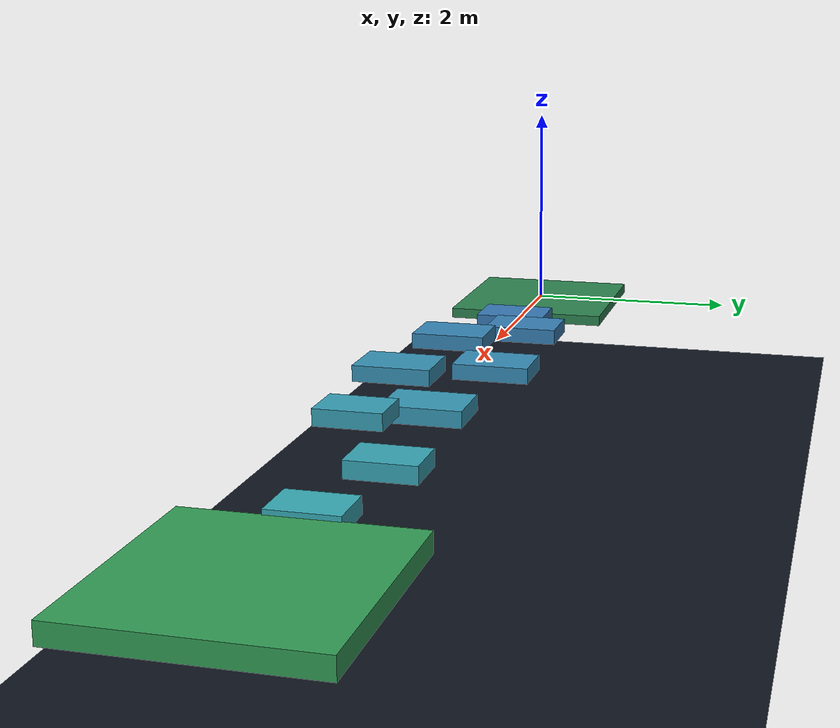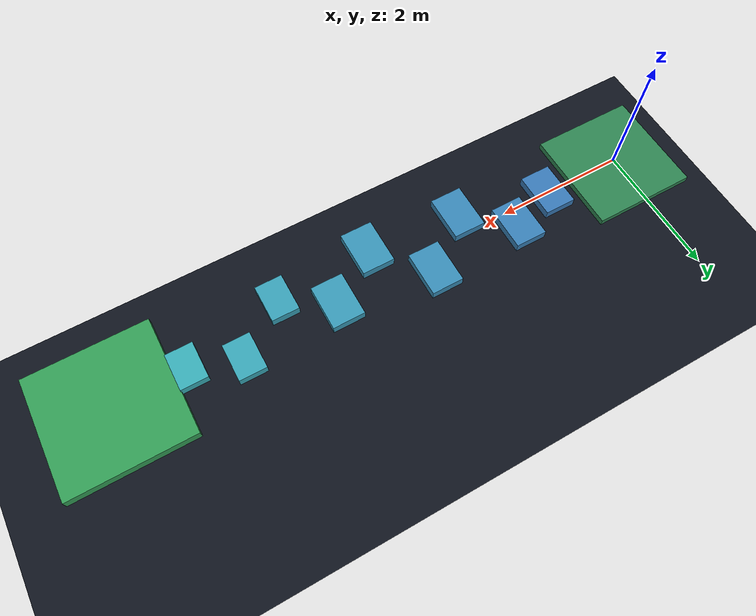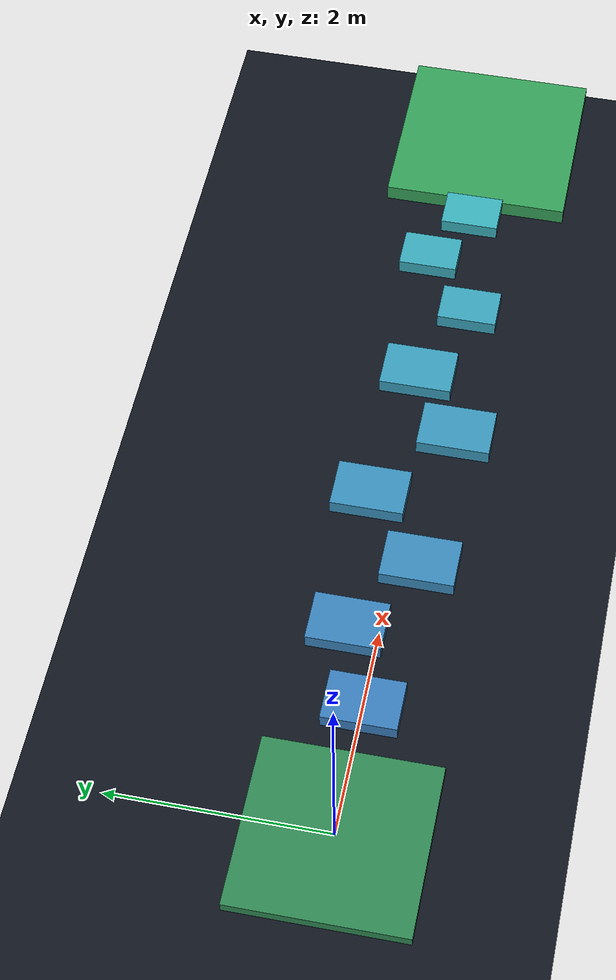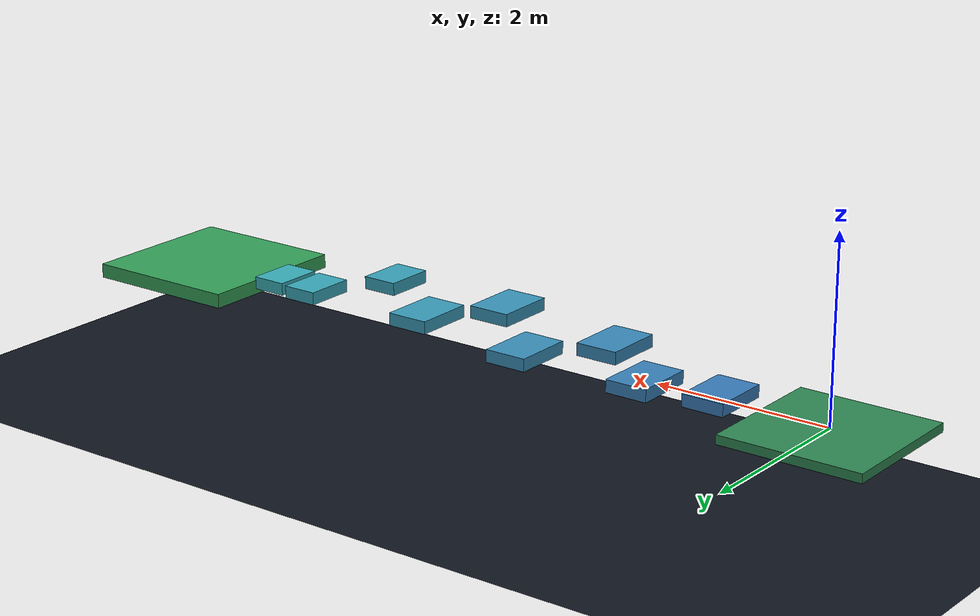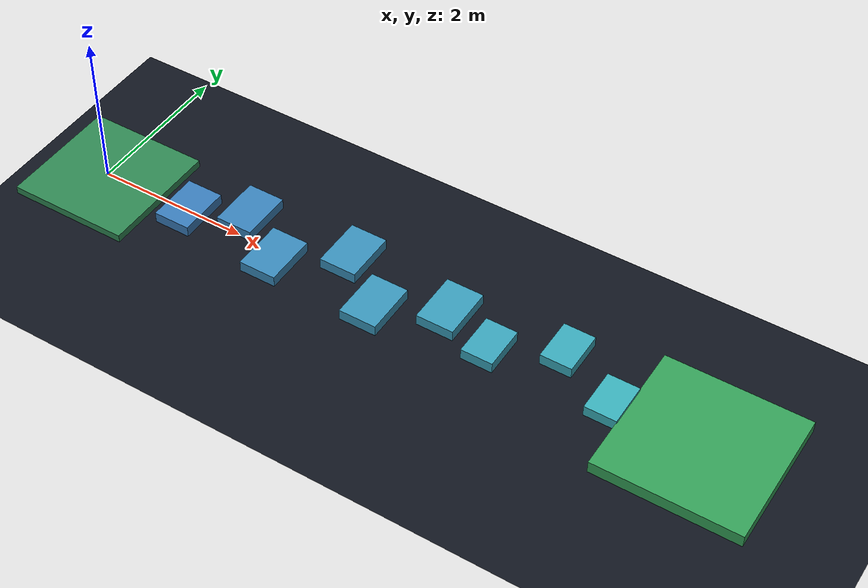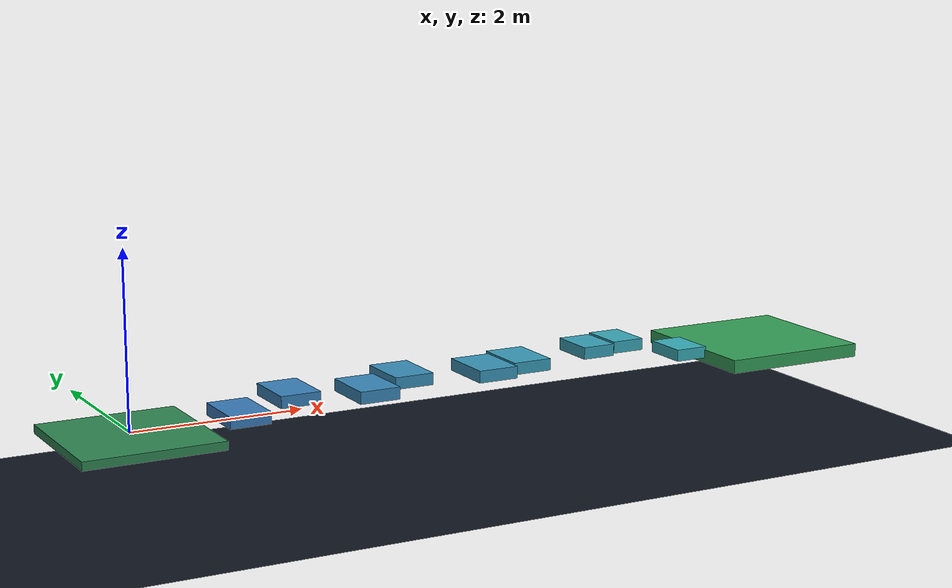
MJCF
<?xml version='1.0' encoding='utf-8'?>
<mujoco model="suspended stepping course"><asset><texture type="2d" name="groundplane" builtin="checker" mark="edge" rgb1="0.18 0.24 0.30" rgb2="0.08 0.12 0.16" markrgb="0.7 0.7 0.7" width="300" height="300" /><material name="groundplane" texture="groundplane" texuniform="true" texrepeat="8 8" reflectance="0.05" /></asset><worldbody><geom name="safety_floor" type="plane" pos="0 0 -1.0" size="0 0 0.05" rgba="0.06 0.08 0.12 1" /><geom name="start" type="box" pos="0 0 -0.05" size="0.8 0.8 0.05" rgba="0.18 0.52 0.32 1" /><geom name="step_0" type="box" pos="1.25 0 0.05" size="0.24 0.34 0.07" rgba="0.22 0.480 0.72 1" /><geom name="step_1" type="box" pos="1.97 0.28 0.12" size="0.24 0.34 0.07" rgba="0.22 0.505 0.72 1" /><geom name="step_2" type="box" pos="2.69 -0.24 0.2" size="0.24 0.34 0.07" rgba="0.22 0.530 0.72 1" /><geom name="step_3" type="box" pos="3.41 0.35 0.14" size="0.24 0.34 0.07" rgba="0.22 0.555 0.72 1" /><geom name="step_4" type="box" pos="4.13 -0.32 0.28" size="0.24 0.34 0.07" rgba="0.22 0.580 0.72 1" /><geom name="step_5" type="box" pos="4.85 0.16 0.18" size="0.24 0.34 0.07" rgba="0.22 0.605 0.72 1" /><geom name="step_6" type="box" pos="5.57 -0.2 0.34" size="0.2 0.28 0.07" rgba="0.22 0.630 0.72 1" /><geom name="step_7" type="box" pos="6.29 0.3 0.22" size="0.2 0.28 0.07" rgba="0.22 0.655 0.72 1" /><geom name="step_8" type="box" pos="7.01 0 0.1" size="0.2 0.28 0.07" rgba="0.22 0.680 0.72 1" /><geom name="finish" type="box" pos="8.1 0 0.05" size="0.9 0.9 0.08" rgba="0.20 0.62 0.34 1" /></worldbody></mujoco>
